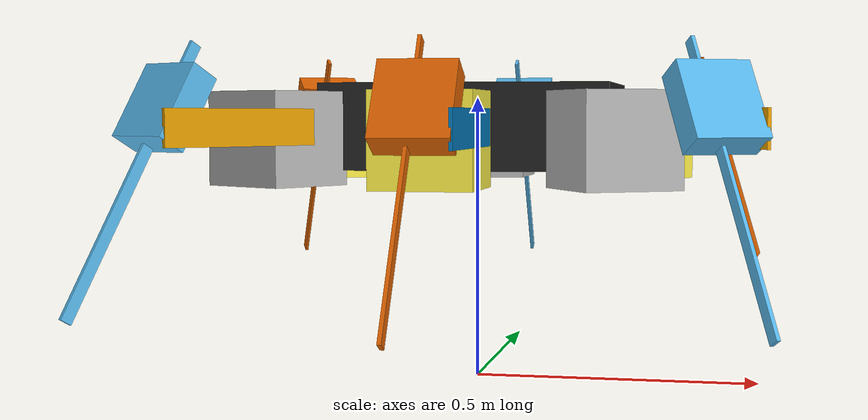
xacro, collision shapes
<?xml version="1.0"?>
<robot xmlns:xacro="http://www.ros.org/wiki/xacro">

    <xacro:property name="friction" value="0.4"/>
    <xacro:property name="joint_vel" value="2.0"/>
    <xacro:property name="joint_effort" value="100.0"/>

    <link name="base_link"/>

    <joint name="base_joint" type="fixed">
        <parent link="base_link"/>
        <child link="body"/>
        <origin xyz="0 0 0.45" rpy="${pi} 0 0"/>
    </joint>

    <link name="body">
        <visual>
            <origin xyz="0 0 0" rpy="0 0 0"/>
            <geometry>
                <mesh filename="file://$(find hexapod_description)/meshes/thorax.STL" scale="3.0 3.0 3.0"/>
            </geometry>
            <material name="black"/>
        </visual>

        <collision>
            <origin xyz="0 0 0" rpy="0 0 0"/>
            <geometry>
                <box size="0.5 0.32 0.15"/>
            </geometry>
        </collision>

        <xacro:box_inertia m="0.3" x="0.5" y="0.32" z="0.15" o_xyz="0 0 0" o_rpy="0 0 0"/>
    </link>

    <xacro:macro name="leg" params="side num coxa_y_val femur_z_val tibia_box_z_val x y ang">

        <joint name="leg_joint_${side}${num}" type="fixed">
            <parent link="body"/>
            <child link="leg_centre_${side}${num}"/>
            <origin xyz="${x} ${y} 0.0" rpy="0.0 0.0 0.0"/>
        </joint>

        <link name="leg_centre_${side}${num}"/>

        <joint name="coxa_joint_${side}${num}" type="revolute">
            <parent link="leg_centre_${side}${num}"/>
            <child link="coxa_${side}${num}"/>
            <axis xyz="0 0 -1"/>
            <limit lower="-1.04" upper="1.04" velocity="${joint_vel}" effort="${joint_effort}"/>
            <dynamics damping="0.0" friction="${friction}"/>
            <origin xyz="0 0 0" rpy="0 0 ${ang}"/>
        </joint>

        <link name="coxa_${side}${num}">
            <visual>
                <origin xyz="0.0 0.0 0.0" rpy="0.0 0.0 0.0"/>
                <geometry>
                    <mesh filename="file://$(find hexapod_description)/meshes/coxa_${side}.STL" scale="3.0 3.0 3.0"/>
                </geometry>
                <material name="teal" />
            </visual>

            <collision>
                <origin xyz="0.05 ${coxa_y_val} 0.02" rpy="0.0 0.0 0.0"/>
                <geometry>
                    <box size="0.16 0.17 0.16"/>
                </geometry>
            </collision>

            <xacro:box_inertia m="0.015" x="0.16" y="0.17" z="0.16" o_xyz="0 0 0" o_rpy="0 0 0"/>
        </link>

        <joint name="femur_joint_${side}${num}" type="revolute">
            <parent link="coxa_${side}${num}"/>
            <child link="femur_${side}${num}"/>
            <axis xyz="0 0 -1"/>
            <limit lower="-1.04" upper="1.04" velocity="${joint_vel}" effort="${joint_effort}"/>
            <dynamics damping="0.0" friction="${friction}"/>
            <origin xyz="0.0882 0 0" rpy="-1.57 0 0"/>
        </joint>

        <link name="femur_${side}${num}">
            <visual>
                <origin xyz="0.0 0.0 0.0" rpy="0.0 0.0 0.0"/>
                <geometry>
                    <mesh filename="file://$(find hexapod_description)/meshes/femur_${side}.STL" scale="3.0 3.0 3.0"/>
                </geometry>
                <material name="teal" />
            </visual>

            <collision>
                <origin xyz="0.12 0.0 ${femur_z_val}" rpy="0.0 0.0 0.0"/>
                <geometry>
                    <box size="0.3 0.06 0.006"/>
                </geometry>
            </collision>

            <xacro:box_inertia m="0.012" x="0.3" y="0.06" z="0.006" o_xyz="0.12 0.0 ${femur_z_val}" o_rpy="0 0 0"/>
        </link>

        <joint name="tibia_joint_${side}${num}" type="revolute">
            <origin xyz="0.24 0.0 0.0" rpy="0.0 0.0 -1.1"/>
            <parent link="femur_${side}${num}"/>
            <child link="tibia_${side}${num}"/>
            <axis xyz="0 0 1"/>
            <limit lower="-0.7" upper="1.57" velocity="${joint_vel}" effort="${joint_effort}"/>
            <dynamics damping="0.0" friction="${friction}"/>
        </joint>

        <link name="tibia_${side}${num}">
            <visual name="">
                <origin xyz="0.0 0.0 0.0" rpy="0.0 0.0 0.06"/>
                <geometry>
                    <mesh filename="file://$(find hexapod_description)/meshes/tibia_${side}.STL" scale="3.0 3.0 3.0"/>
                </geometry>
                <material name="teal" />
            </visual>

            <collision>
                <origin xyz="-0.035 0.0 ${tibia_box_z_val}" rpy="0.0 0.0 0.06"/>
                <geometry>
                    <box size="0.13 0.05 0.12"/>
                </geometry>
            </collision>
            <collision>
                <origin xyz="0.085 0 0" rpy="0.0 0.0 0.06"/>
                <geometry>
                    <box size="0.48 0.02 0.006"/>
                </geometry>
            </collision>

            <xacro:box_inertia m="0.015" x="0.3" y="0.05" z="0.05" o_xyz="-0.035 0.0 ${tibia_box_z_val}" o_rpy="0 0 0"/>
        </link>

    </xacro:macro>

    <xacro:leg side="r" num="1" coxa_y_val = "-0.03" femur_z_val = "0.067" tibia_box_z_val = "0.008" x="0.262794" 	y="-0.151725" 	ang="-${pi/3}" />
	<xacro:leg side="r" num="2" coxa_y_val = "-0.03" femur_z_val = "0.067" tibia_box_z_val = "0.008" x="0" 		y="-0.20955" 	ang="-${pi/2}" />
	<xacro:leg side="r" num="3" coxa_y_val = "-0.03" femur_z_val = "0.067" tibia_box_z_val = "0.008" x="-0.262794" 	y="-0.151725" 	ang="-${pi*2/3}" />
	<xacro:leg side="l" num="1" coxa_y_val = "0.03" femur_z_val = "-0.067" tibia_box_z_val = "-0.008" x="0.262794" 	y="0.151725"	ang="${pi/3}" />
	<xacro:leg side="l" num="2" coxa_y_val = "0.03" femur_z_val = "-0.067" tibia_box_z_val = "-0.008" x="0" 		y="0.20955"	ang="${pi/2}" />
	<xacro:leg side="l" num="3" coxa_y_val = "0.03" femur_z_val = "-0.067" tibia_box_z_val = "-0.008" x="-0.262794" 	y="0.151725" 	ang="${pi*2/3}" />
</robot>
